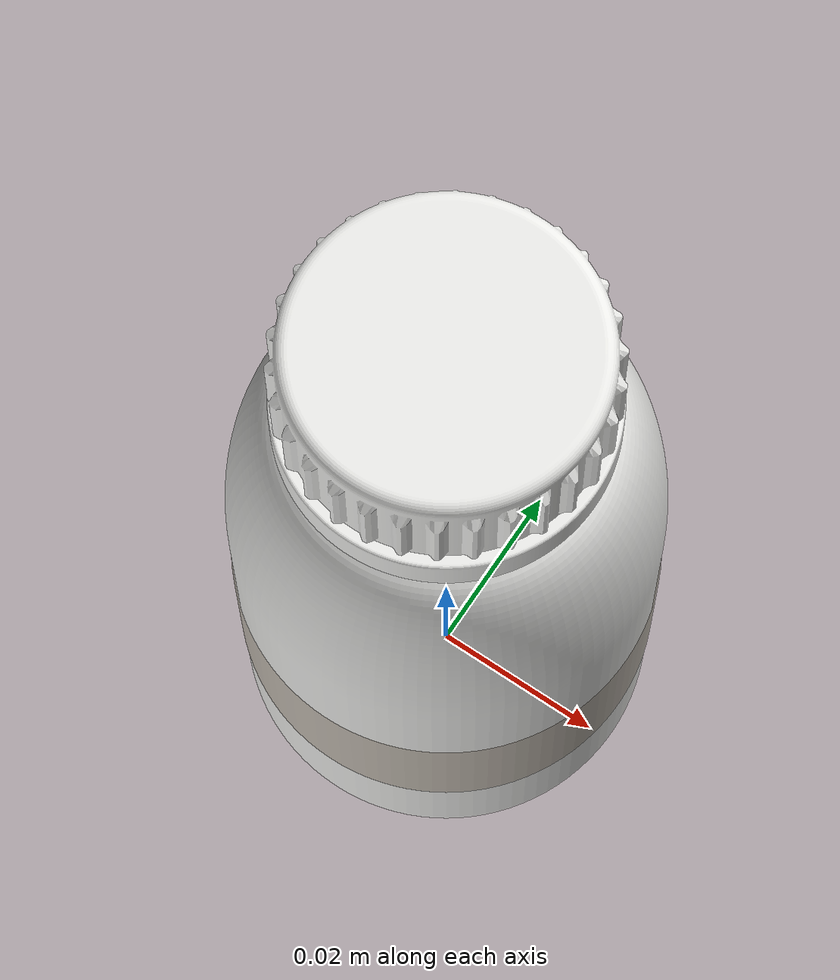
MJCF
<!-- Generated by tools/build_labelled_bottles.py. Sclareolide (powder),
     100 ml, marker 160, barcode 2005081429496.
     Origin bottom-centre, +Z up, the label's front facing -Y. -->
<mujoco model="PWD-0061">
  <asset>
    <mesh name="bottle_100ml_body" file="meshes/bottle_100ml_body.obj" inertia="exact"/>
    <mesh name="bottle_100ml_cap" file="meshes/bottle_100ml_cap.obj" inertia="exact"/>
    <mesh name="bottle_100ml_label" file="meshes/bottle_100ml_label.obj" inertia="shell"/>
    <texture name="label" type="2d" file="textures/PWD-0061.png"/>
    <material name="label" texture="label" specular="0.05" shininess="0.1"/>
  </asset>
  <worldbody>
    <body name="PWD-0061">
      <geom name="body" type="mesh" mesh="bottle_100ml_body" rgba="0.920 0.920 0.910 1.000" density="950"/>
      <geom name="cap" type="mesh" mesh="bottle_100ml_cap" rgba="0.920 0.920 0.910 1.000" density="900"/>
      <geom name="label" type="mesh" mesh="bottle_100ml_label" material="label" contype="0" conaffinity="0" mass="0"/>
    </body>
  </worldbody>
</mujoco>
